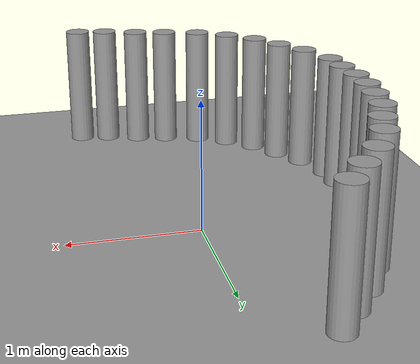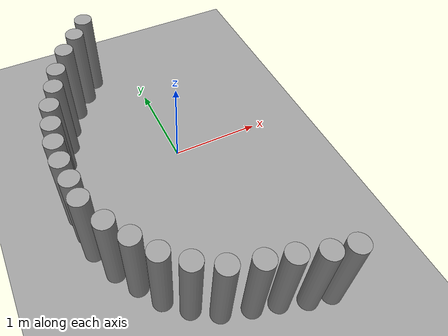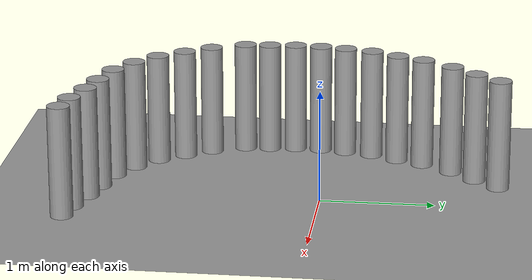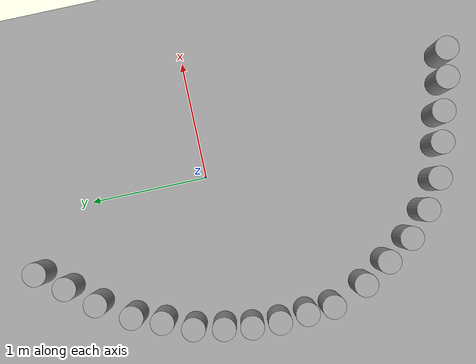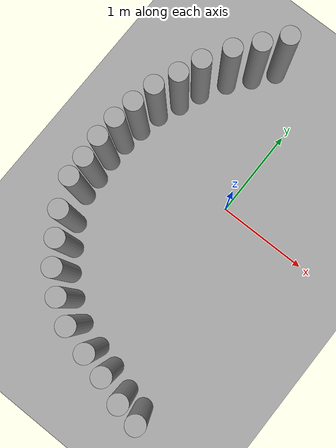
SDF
<sdf version="1.6">
 <world name="default">
  <model name="ground_plane_0">
   <static>1</static>
   <link name="link">
    <collision name="collision">
     <geometry><plane><normal>0 0 1</normal><size>100 100</size></plane></geometry>
     <surface><friction><ode><mu>100</mu><mu2>50</mu2></ode></friction></surface>
    </collision>
    <visual name="visual">
     <cast_shadows>0</cast_shadows>
     <geometry><plane><normal>0 0 1</normal><size>100 100</size></plane></geometry>
     <material>
      <script><uri>file://media/materials/scripts/gazebo.material</uri><name>Gazebo/Grey</name></script>
     </material>
    </visual>
    <velocity_decay><linear>0</linear><angular>0</angular></velocity_decay>
   </link>
   <pose>0.497681 0 0 0 -0 0</pose>
  </model>
  <model name="small_cylinder_0_clone_9">
   <link name="link">
    <inertial>
     <mass>1</mass>
     <inertia><ixx>0.145833</ixx><ixy>0</ixy><ixz>0</ixz><iyy>0.145833</iyy><iyz>0</iyz><izz>0.125</izz></inertia>
    </inertial>
    <visual name="visual">
     <geometry><cylinder><radius>0.1</radius><length>1</length></cylinder></geometry>
     <material>
      <script><name>Gazebo/Grey</name><uri>file://media/materials/scripts/gazebo.material</uri></script>
      <ambient>0.3 0.3 0.3 1</ambient>
      <diffuse>0.7 0.7 0.7 1</diffuse>
      <specular>0.01 0.01 0.01 1</specular>
      <emissive>0 0 0 1</emissive>
      <shader type="vertex"><normal_map>__default__</normal_map></shader>
     </material>
    </visual>
    <collision name="collision">
     <geometry><cylinder><radius>0.1</radius><length>1</length></cylinder></geometry>
     <surface>
      <friction>
       <ode><mu>1</mu><mu2>1</mu2><fdir1>0 0 0</fdir1><slip1>0</slip1><slip2>0</slip2></ode>
       <torsional>
        <coefficient>1</coefficient>
        <patch_radius>0</patch_radius>
        <surface_radius>0</surface_radius>
        <use_patch_radius>1</use_patch_radius>
        <ode><slip>0</slip></ode>
       </torsional>
      </friction>
      <bounce><restitution_coefficient>0</restitution_coefficient><threshold>1e+06</threshold></bounce>
      <contact>
       <collide_without_contact>0</collide_without_contact>
       <collide_without_contact_bitmask>1</collide_without_contact_bitmask>
       <collide_bitmask>1</collide_bitmask>
       <ode>
        <soft_cfm>0</soft_cfm>
        <soft_erp>0.2</soft_erp>
        <kp>1e+13</kp>
        <kd>1</kd>
        <max_vel>0.01</max_vel>
        <min_depth>0</min_depth>
       </ode>
       <bullet>
        <split_impulse>1</split_impulse>
        <split_impulse_penetration_threshold>-0.01</split_impulse_penetration_threshold>
        <soft_cfm>0</soft_cfm>
        <soft_erp>0.2</soft_erp>
        <kp>1e+13</kp>
        <kd>1</kd>
       </bullet>
      </contact>
     </surface>
    </collision>
   </link>
   <static>1</static>
   <pose>0.612069 -2.16006 0.499121 0 -6e-06 0.002231</pose>
  </model>
  <model name="small_cylinder_0_clone_10">
   <link name="link">
    <inertial>
     <mass>1</mass>
     <inertia><ixx>0.145833</ixx><ixy>0</ixy><ixz>0</ixz><iyy>0.145833</iyy><iyz>0</iyz><izz>0.125</izz></inertia>
    </inertial>
    <visual name="visual">
     <geometry><cylinder><radius>0.1</radius><length>1</length></cylinder></geometry>
     <material>
      <script><name>Gazebo/Grey</name><uri>file://media/materials/scripts/gazebo.material</uri></script>
      <ambient>0.3 0.3 0.3 1</ambient>
      <diffuse>0.7 0.7 0.7 1</diffuse>
      <specular>0.01 0.01 0.01 1</specular>
      <emissive>0 0 0 1</emissive>
      <shader type="vertex"><normal_map>__default__</normal_map></shader>
     </material>
    </visual>
    <collision name="collision">
     <geometry><cylinder><radius>0.1</radius><length>1</length></cylinder></geometry>
     <surface>
      <friction>
       <ode><mu>1</mu><mu2>1</mu2><fdir1>0 0 0</fdir1><slip1>0</slip1><slip2>0</slip2></ode>
       <torsional>
        <coefficient>1</coefficient>
        <patch_radius>0</patch_radius>
        <surface_radius>0</surface_radius>
        <use_patch_radius>1</use_patch_radius>
        <ode><slip>0</slip></ode>
       </torsional>
      </friction>
      <bounce><restitution_coefficient>0</restitution_coefficient><threshold>1e+06</threshold></bounce>
      <contact>
       <collide_without_contact>0</collide_without_contact>
       <collide_without_contact_bitmask>1</collide_without_contact_bitmask>
       <collide_bitmask>1</collide_bitmask>
       <ode>
        <soft_cfm>0</soft_cfm>
        <soft_erp>0.2</soft_erp>
        <kp>1e+13</kp>
        <kd>1</kd>
        <max_vel>0.01</max_vel>
        <min_depth>0</min_depth>
       </ode>
       <bullet>
        <split_impulse>1</split_impulse>
        <split_impulse_penetration_threshold>-0.01</split_impulse_penetration_threshold>
        <soft_cfm>0</soft_cfm>
        <soft_erp>0.2</soft_erp>
        <kp>1e+13</kp>
        <kd>1</kd>
       </bullet>
      </contact>
     </surface>
    </collision>
   </link>
   <static>1</static>
   <pose>0.116597 -2.0273 0.499121 0 6e-06 -0.010863</pose>
  </model>
  <model name="small_cylinder_0_clone_11">
   <link name="link">
    <inertial>
     <mass>1</mass>
     <inertia><ixx>0.145833</ixx><ixy>0</ixy><ixz>0</ixz><iyy>0.145833</iyy><iyz>0</iyz><izz>0.125</izz></inertia>
    </inertial>
    <visual name="visual">
     <geometry><cylinder><radius>0.1</radius><length>1</length></cylinder></geometry>
     <material>
      <script><name>Gazebo/Grey</name><uri>file://media/materials/scripts/gazebo.material</uri></script>
      <ambient>0.3 0.3 0.3 1</ambient>
      <diffuse>0.7 0.7 0.7 1</diffuse>
      <specular>0.01 0.01 0.01 1</specular>
      <emissive>0 0 0 1</emissive>
      <shader type="vertex"><normal_map>__default__</normal_map></shader>
     </material>
    </visual>
    <collision name="collision">
     <geometry><cylinder><radius>0.1</radius><length>1</length></cylinder></geometry>
     <surface>
      <friction>
       <ode><mu>1</mu><mu2>1</mu2><fdir1>0 0 0</fdir1><slip1>0</slip1><slip2>0</slip2></ode>
       <torsional>
        <coefficient>1</coefficient>
        <patch_radius>0</patch_radius>
        <surface_radius>0</surface_radius>
        <use_patch_radius>1</use_patch_radius>
        <ode><slip>0</slip></ode>
       </torsional>
      </friction>
      <bounce><restitution_coefficient>0</restitution_coefficient><threshold>1e+06</threshold></bounce>
      <contact>
       <collide_without_contact>0</collide_without_contact>
       <collide_without_contact_bitmask>1</collide_without_contact_bitmask>
       <collide_bitmask>1</collide_bitmask>
       <ode>
        <soft_cfm>0</soft_cfm>
        <soft_erp>0.2</soft_erp>
        <kp>1e+13</kp>
        <kd>1</kd>
        <max_vel>0.01</max_vel>
        <min_depth>0</min_depth>
       </ode>
       <bullet>
        <split_impulse>1</split_impulse>
        <split_impulse_penetration_threshold>-0.01</split_impulse_penetration_threshold>
        <soft_cfm>0</soft_cfm>
        <soft_erp>0.2</soft_erp>
        <kp>1e+13</kp>
        <kd>1</kd>
       </bullet>
      </contact>
     </surface>
    </collision>
   </link>
   <static>1</static>
   <pose>-0.131034 -1.96466 0.499121 0 6e-06 -0.010858</pose>
  </model>
  <model name="small_cylinder_0_clone_12">
   <link name="link">
    <inertial>
     <mass>1</mass>
     <inertia><ixx>0.145833</ixx><ixy>0</ixy><ixz>0</ixz><iyy>0.145833</iyy><iyz>0</iyz><izz>0.125</izz></inertia>
    </inertial>
    <visual name="visual">
     <geometry><cylinder><radius>0.1</radius><length>1</length></cylinder></geometry>
     <material>
      <script><name>Gazebo/Grey</name><uri>file://media/materials/scripts/gazebo.material</uri></script>
      <ambient>0.3 0.3 0.3 1</ambient>
      <diffuse>0.7 0.7 0.7 1</diffuse>
      <specular>0.01 0.01 0.01 1</specular>
      <emissive>0 0 0 1</emissive>
      <shader type="vertex"><normal_map>__default__</normal_map></shader>
     </material>
    </visual>
    <collision name="collision">
     <geometry><cylinder><radius>0.1</radius><length>1</length></cylinder></geometry>
     <surface>
      <friction>
       <ode><mu>1</mu><mu2>1</mu2><fdir1>0 0 0</fdir1><slip1>0</slip1><slip2>0</slip2></ode>
       <torsional>
        <coefficient>1</coefficient>
        <patch_radius>0</patch_radius>
        <surface_radius>0</surface_radius>
        <use_patch_radius>1</use_patch_radius>
        <ode><slip>0</slip></ode>
       </torsional>
      </friction>
      <bounce><restitution_coefficient>0</restitution_coefficient><threshold>1e+06</threshold></bounce>
      <contact>
       <collide_without_contact>0</collide_without_contact>
       <collide_without_contact_bitmask>1</collide_without_contact_bitmask>
       <collide_bitmask>1</collide_bitmask>
       <ode>
        <soft_cfm>0</soft_cfm>
        <soft_erp>0.2</soft_erp>
        <kp>1e+13</kp>
        <kd>1</kd>
        <max_vel>0.01</max_vel>
        <min_depth>0</min_depth>
       </ode>
       <bullet>
        <split_impulse>1</split_impulse>
        <split_impulse_penetration_threshold>-0.01</split_impulse_penetration_threshold>
        <soft_cfm>0</soft_cfm>
        <soft_erp>0.2</soft_erp>
        <kp>1e+13</kp>
        <kd>1</kd>
       </bullet>
      </contact>
     </surface>
    </collision>
   </link>
   <static>1</static>
   <pose>-0.414773 -1.88306 0.499121 0 6e-06 -0.010877</pose>
  </model>
  <model name="small_cylinder_0_clone_13">
   <link name="link">
    <inertial>
     <mass>1</mass>
     <inertia><ixx>0.145833</ixx><ixy>0</ixy><ixz>0</ixz><iyy>0.145833</iyy><iyz>0</iyz><izz>0.125</izz></inertia>
    </inertial>
    <visual name="visual">
     <geometry><cylinder><radius>0.1</radius><length>1</length></cylinder></geometry>
     <material>
      <script><name>Gazebo/Grey</name><uri>file://media/materials/scripts/gazebo.material</uri></script>
      <ambient>0.3 0.3 0.3 1</ambient>
      <diffuse>0.7 0.7 0.7 1</diffuse>
      <specular>0.01 0.01 0.01 1</specular>
      <emissive>0 0 0 1</emissive>
      <shader type="vertex"><normal_map>__default__</normal_map></shader>
     </material>
    </visual>
    <collision name="collision">
     <geometry><cylinder><radius>0.1</radius><length>1</length></cylinder></geometry>
     <surface>
      <friction>
       <ode><mu>1</mu><mu2>1</mu2><fdir1>0 0 0</fdir1><slip1>0</slip1><slip2>0</slip2></ode>
       <torsional>
        <coefficient>1</coefficient>
        <patch_radius>0</patch_radius>
        <surface_radius>0</surface_radius>
        <use_patch_radius>1</use_patch_radius>
        <ode><slip>0</slip></ode>
       </torsional>
      </friction>
      <bounce><restitution_coefficient>0</restitution_coefficient><threshold>1e+06</threshold></bounce>
      <contact>
       <collide_without_contact>0</collide_without_contact>
       <collide_without_contact_bitmask>1</collide_without_contact_bitmask>
       <collide_bitmask>1</collide_bitmask>
       <ode>
        <soft_cfm>0</soft_cfm>
        <soft_erp>0.2</soft_erp>
        <kp>1e+13</kp>
        <kd>1</kd>
        <max_vel>0.01</max_vel>
        <min_depth>0</min_depth>
       </ode>
       <bullet>
        <split_impulse>1</split_impulse>
        <split_impulse_penetration_threshold>-0.01</split_impulse_penetration_threshold>
        <soft_cfm>0</soft_cfm>
        <soft_erp>0.2</soft_erp>
        <kp>1e+13</kp>
        <kd>1</kd>
       </bullet>
      </contact>
     </surface>
    </collision>
   </link>
   <static>1</static>
   <pose>-0.648054 -1.73782 0.499121 0 6e-06 -0.010877</pose>
  </model>
  <model name="small_cylinder_0_clone_14">
   <link name="link">
    <inertial>
     <mass>1</mass>
     <inertia><ixx>0.145833</ixx><ixy>0</ixy><ixz>0</ixz><iyy>0.145833</iyy><iyz>0</iyz><izz>0.125</izz></inertia>
    </inertial>
    <visual name="visual">
     <geometry><cylinder><radius>0.1</radius><length>1</length></cylinder></geometry>
     <material>
      <script><name>Gazebo/Grey</name><uri>file://media/materials/scripts/gazebo.material</uri></script>
      <ambient>0.3 0.3 0.3 1</ambient>
      <diffuse>0.7 0.7 0.7 1</diffuse>
      <specular>0.01 0.01 0.01 1</specular>
      <emissive>0 0 0 1</emissive>
      <shader type="vertex"><normal_map>__default__</normal_map></shader>
     </material>
    </visual>
    <collision name="collision">
     <geometry><cylinder><radius>0.1</radius><length>1</length></cylinder></geometry>
     <surface>
      <friction>
       <ode><mu>1</mu><mu2>1</mu2><fdir1>0 0 0</fdir1><slip1>0</slip1><slip2>0</slip2></ode>
       <torsional>
        <coefficient>1</coefficient>
        <patch_radius>0</patch_radius>
        <surface_radius>0</surface_radius>
        <use_patch_radius>1</use_patch_radius>
        <ode><slip>0</slip></ode>
       </torsional>
      </friction>
      <bounce><restitution_coefficient>0</restitution_coefficient><threshold>1e+06</threshold></bounce>
      <contact>
       <collide_without_contact>0</collide_without_contact>
       <collide_without_contact_bitmask>1</collide_without_contact_bitmask>
       <collide_bitmask>1</collide_bitmask>
       <ode>
        <soft_cfm>0</soft_cfm>
        <soft_erp>0.2</soft_erp>
        <kp>1e+13</kp>
        <kd>1</kd>
        <max_vel>0.01</max_vel>
        <min_depth>0</min_depth>
       </ode>
       <bullet>
        <split_impulse>1</split_impulse>
        <split_impulse_penetration_threshold>-0.01</split_impulse_penetration_threshold>
        <soft_cfm>0</soft_cfm>
        <soft_erp>0.2</soft_erp>
        <kp>1e+13</kp>
        <kd>1</kd>
       </bullet>
      </contact>
     </surface>
    </collision>
   </link>
   <static>1</static>
   <pose>-0.849121 -1.5563 0.499121 0 6e-06 -0.010873</pose>
  </model>
  <model name="small_cylinder_0_clone_15">
   <link name="link">
    <inertial>
     <mass>1</mass>
     <inertia><ixx>0.145833</ixx><ixy>0</ixy><ixz>0</ixz><iyy>0.145833</iyy><iyz>0</iyz><izz>0.125</izz></inertia>
    </inertial>
    <visual name="visual">
     <geometry><cylinder><radius>0.1</radius><length>1</length></cylinder></geometry>
     <material>
      <script><name>Gazebo/Grey</name><uri>file://media/materials/scripts/gazebo.material</uri></script>
      <ambient>0.3 0.3 0.3 1</ambient>
      <diffuse>0.7 0.7 0.7 1</diffuse>
      <specular>0.01 0.01 0.01 1</specular>
      <emissive>0 0 0 1</emissive>
      <shader type="vertex"><normal_map>__default__</normal_map></shader>
     </material>
    </visual>
    <collision name="collision">
     <geometry><cylinder><radius>0.1</radius><length>1</length></cylinder></geometry>
     <surface>
      <friction>
       <ode><mu>1</mu><mu2>1</mu2><fdir1>0 0 0</fdir1><slip1>0</slip1><slip2>0</slip2></ode>
       <torsional>
        <coefficient>1</coefficient>
        <patch_radius>0</patch_radius>
        <surface_radius>0</surface_radius>
        <use_patch_radius>1</use_patch_radius>
        <ode><slip>0</slip></ode>
       </torsional>
      </friction>
      <bounce><restitution_coefficient>0</restitution_coefficient><threshold>1e+06</threshold></bounce>
      <contact>
       <collide_without_contact>0</collide_without_contact>
       <collide_without_contact_bitmask>1</collide_without_contact_bitmask>
       <collide_bitmask>1</collide_bitmask>
       <ode>
        <soft_cfm>0</soft_cfm>
        <soft_erp>0.2</soft_erp>
        <kp>1e+13</kp>
        <kd>1</kd>
        <max_vel>0.01</max_vel>
        <min_depth>0</min_depth>
       </ode>
       <bullet>
        <split_impulse>1</split_impulse>
        <split_impulse_penetration_threshold>-0.01</split_impulse_penetration_threshold>
        <soft_cfm>0</soft_cfm>
        <soft_erp>0.2</soft_erp>
        <kp>1e+13</kp>
        <kd>1</kd>
       </bullet>
      </contact>
     </surface>
    </collision>
   </link>
   <static>1</static>
   <pose>0.379762 -2.11588 0.499121 0 6e-06 -0.01127</pose>
  </model>
  <model name="small_cylinder_0_clone_16">
   <link name="link">
    <inertial>
     <mass>1</mass>
     <inertia><ixx>0.145833</ixx><ixy>0</ixy><ixz>0</ixz><iyy>0.145833</iyy><iyz>0</iyz><izz>0.125</izz></inertia>
    </inertial>
    <visual name="visual">
     <geometry><cylinder><radius>0.1</radius><length>1</length></cylinder></geometry>
     <material>
      <script><name>Gazebo/Grey</name><uri>file://media/materials/scripts/gazebo.material</uri></script>
      <ambient>0.3 0.3 0.3 1</ambient>
      <diffuse>0.7 0.7 0.7 1</diffuse>
      <specular>0.01 0.01 0.01 1</specular>
      <emissive>0 0 0 1</emissive>
      <shader type="vertex"><normal_map>__default__</normal_map></shader>
     </material>
    </visual>
    <collision name="collision">
     <geometry><cylinder><radius>0.1</radius><length>1</length></cylinder></geometry>
     <surface>
      <friction>
       <ode><mu>1</mu><mu2>1</mu2><fdir1>0 0 0</fdir1><slip1>0</slip1><slip2>0</slip2></ode>
       <torsional>
        <coefficient>1</coefficient>
        <patch_radius>0</patch_radius>
        <surface_radius>0</surface_radius>
        <use_patch_radius>1</use_patch_radius>
        <ode><slip>0</slip></ode>
       </torsional>
      </friction>
      <bounce><restitution_coefficient>0</restitution_coefficient><threshold>1e+06</threshold></bounce>
      <contact>
       <collide_without_contact>0</collide_without_contact>
       <collide_without_contact_bitmask>1</collide_without_contact_bitmask>
       <collide_bitmask>1</collide_bitmask>
       <ode>
        <soft_cfm>0</soft_cfm>
        <soft_erp>0.2</soft_erp>
        <kp>1e+13</kp>
        <kd>1</kd>
        <max_vel>0.01</max_vel>
        <min_depth>0</min_depth>
       </ode>
       <bullet>
        <split_impulse>1</split_impulse>
        <split_impulse_penetration_threshold>-0.01</split_impulse_penetration_threshold>
        <soft_cfm>0</soft_cfm>
        <soft_erp>0.2</soft_erp>
        <kp>1e+13</kp>
        <kd>1</kd>
       </bullet>
      </contact>
     </surface>
    </collision>
   </link>
   <static>1</static>
   <pose>-0.999768 -1.3353 0.499121 0 6e-06 -0.011235</pose>
  </model>
  <model name="small_cylinder_0_clone_17">
   <link name="link">
    <inertial>
     <mass>1</mass>
     <inertia><ixx>0.145833</ixx><ixy>0</ixy><ixz>0</ixz><iyy>0.145833</iyy><iyz>0</iyz><izz>0.125</izz></inertia>
    </inertial>
    <visual name="visual">
     <geometry><cylinder><radius>0.1</radius><length>1</length></cylinder></geometry>
     <material>
      <script><name>Gazebo/Grey</name><uri>file://media/materials/scripts/gazebo.material</uri></script>
      <ambient>0.3 0.3 0.3 1</ambient>
      <diffuse>0.7 0.7 0.7 1</diffuse>
      <specular>0.01 0.01 0.01 1</specular>
      <emissive>0 0 0 1</emissive>
      <shader type="vertex"><normal_map>__default__</normal_map></shader>
     </material>
    </visual>
    <collision name="collision">
     <geometry><cylinder><radius>0.1</radius><length>1</length></cylinder></geometry>
     <surface>
      <friction>
       <ode><mu>1</mu><mu2>1</mu2><fdir1>0 0 0</fdir1><slip1>0</slip1><slip2>0</slip2></ode>
       <torsional>
        <coefficient>1</coefficient>
        <patch_radius>0</patch_radius>
        <surface_radius>0</surface_radius>
        <use_patch_radius>1</use_patch_radius>
        <ode><slip>0</slip></ode>
       </torsional>
      </friction>
      <bounce><restitution_coefficient>0</restitution_coefficient><threshold>1e+06</threshold></bounce>
      <contact>
       <collide_without_contact>0</collide_without_contact>
       <collide_without_contact_bitmask>1</collide_without_contact_bitmask>
       <collide_bitmask>1</collide_bitmask>
       <ode>
        <soft_cfm>0</soft_cfm>
        <soft_erp>0.2</soft_erp>
        <kp>1e+13</kp>
        <kd>1</kd>
        <max_vel>0.01</max_vel>
        <min_depth>0</min_depth>
       </ode>
       <bullet>
        <split_impulse>1</split_impulse>
        <split_impulse_penetration_threshold>-0.01</split_impulse_penetration_threshold>
        <soft_cfm>0</soft_cfm>
        <soft_erp>0.2</soft_erp>
        <kp>1e+13</kp>
        <kd>1</kd>
       </bullet>
      </contact>
     </surface>
    </collision>
   </link>
   <static>1</static>
   <pose>-1.14508 -1.11083 0.499121 0 6e-06 -0.010894</pose>
  </model>
  <model name="small_cylinder_0_clone_18">
   <link name="link">
    <inertial>
     <mass>1</mass>
     <inertia><ixx>0.145833</ixx><ixy>0</ixy><ixz>0</ixz><iyy>0.145833</iyy><iyz>0</iyz><izz>0.125</izz></inertia>
    </inertial>
    <visual name="visual">
     <geometry><cylinder><radius>0.1</radius><length>1</length></cylinder></geometry>
     <material>
      <script><name>Gazebo/Grey</name><uri>file://media/materials/scripts/gazebo.material</uri></script>
      <ambient>0.3 0.3 0.3 1</ambient>
      <diffuse>0.7 0.7 0.7 1</diffuse>
      <specular>0.01 0.01 0.01 1</specular>
      <emissive>0 0 0 1</emissive>
      <shader type="vertex"><normal_map>__default__</normal_map></shader>
     </material>
    </visual>
    <collision name="collision">
     <geometry><cylinder><radius>0.1</radius><length>1</length></cylinder></geometry>
     <surface>
      <friction>
       <ode><mu>1</mu><mu2>1</mu2><fdir1>0 0 0</fdir1><slip1>0</slip1><slip2>0</slip2></ode>
       <torsional>
        <coefficient>1</coefficient>
        <patch_radius>0</patch_radius>
        <surface_radius>0</surface_radius>
        <use_patch_radius>1</use_patch_radius>
        <ode><slip>0</slip></ode>
       </torsional>
      </friction>
      <bounce><restitution_coefficient>0</restitution_coefficient><threshold>1e+06</threshold></bounce>
      <contact>
       <collide_without_contact>0</collide_without_contact>
       <collide_without_contact_bitmask>1</collide_without_contact_bitmask>
       <collide_bitmask>1</collide_bitmask>
       <ode>
        <soft_cfm>0</soft_cfm>
        <soft_erp>0.2</soft_erp>
        <kp>1e+13</kp>
        <kd>1</kd>
        <max_vel>0.01</max_vel>
        <min_depth>0</min_depth>
       </ode>
       <bullet>
        <split_impulse>1</split_impulse>
        <split_impulse_penetration_threshold>-0.01</split_impulse_penetration_threshold>
        <soft_cfm>0</soft_cfm>
        <soft_erp>0.2</soft_erp>
        <kp>1e+13</kp>
        <kd>1</kd>
       </bullet>
      </contact>
     </surface>
    </collision>
   </link>
   <static>1</static>
   <pose>-1.26492 -0.816128 0.499121 0 6e-06 -0.010915</pose>
  </model>
  <model name="small_cylinder_0_clone_clone_9">
   <link name="link">
    <inertial>
     <mass>1</mass>
     <inertia><ixx>0.145833</ixx><ixy>0</ixy><ixz>0</ixz><iyy>0.145833</iyy><iyz>0</iyz><izz>0.125</izz></inertia>
    </inertial>
    <visual name="visual">
     <geometry><cylinder><radius>0.1</radius><length>1</length></cylinder></geometry>
     <material>
      <script><name>Gazebo/Grey</name><uri>file://media/materials/scripts/gazebo.material</uri></script>
      <ambient>0.3 0.3 0.3 1</ambient>
      <diffuse>0.7 0.7 0.7 1</diffuse>
      <specular>0.01 0.01 0.01 1</specular>
      <emissive>0 0 0 1</emissive>
      <shader type="vertex"><normal_map>__default__</normal_map></shader>
     </material>
    </visual>
    <collision name="collision">
     <geometry><cylinder><radius>0.1</radius><length>1</length></cylinder></geometry>
     <surface>
      <friction>
       <ode><mu>1</mu><mu2>1</mu2><fdir1>0 0 0</fdir1><slip1>0</slip1><slip2>0</slip2></ode>
       <torsional>
        <coefficient>1</coefficient>
        <patch_radius>0</patch_radius>
        <surface_radius>0</surface_radius>
        <use_patch_radius>1</use_patch_radius>
        <ode><slip>0</slip></ode>
       </torsional>
      </friction>
      <bounce><restitution_coefficient>0</restitution_coefficient><threshold>1e+06</threshold></bounce>
      <contact>
       <collide_without_contact>0</collide_without_contact>
       <collide_without_contact_bitmask>1</collide_without_contact_bitmask>
       <collide_bitmask>1</collide_bitmask>
       <ode>
        <soft_cfm>0</soft_cfm>
        <soft_erp>0.2</soft_erp>
        <kp>1e+13</kp>
        <kd>1</kd>
        <max_vel>0.01</max_vel>
        <min_depth>0</min_depth>
       </ode>
       <bullet>
        <split_impulse>1</split_impulse>
        <split_impulse_penetration_threshold>-0.01</split_impulse_penetration_threshold>
        <soft_cfm>0</soft_cfm>
        <soft_erp>0.2</soft_erp>
        <kp>1e+13</kp>
        <kd>1</kd>
       </bullet>
      </contact>
     </surface>
    </collision>
   </link>
   <static>1</static>
   <pose>-1.27841 -0.593849 0.499121 0 6e-06 -0.010334</pose>
  </model>
  <model name="small_cylinder_0_clone_clone_10">
   <link name="link">
    <inertial>
     <mass>1</mass>
     <inertia><ixx>0.145833</ixx><ixy>0</ixy><ixz>0</ixz><iyy>0.145833</iyy><iyz>0</iyz><izz>0.125</izz></inertia>
    </inertial>
    <visual name="visual">
     <geometry><cylinder><radius>0.1</radius><length>1</length></cylinder></geometry>
     <material>
      <script><name>Gazebo/Grey</name><uri>file://media/materials/scripts/gazebo.material</uri></script>
      <ambient>0.3 0.3 0.3 1</ambient>
      <diffuse>0.7 0.7 0.7 1</diffuse>
      <specular>0.01 0.01 0.01 1</specular>
      <emissive>0 0 0 1</emissive>
      <shader type="vertex"><normal_map>__default__</normal_map></shader>
     </material>
    </visual>
    <collision name="collision">
     <geometry><cylinder><radius>0.1</radius><length>1</length></cylinder></geometry>
     <surface>
      <friction>
       <ode><mu>1</mu><mu2>1</mu2><fdir1>0 0 0</fdir1><slip1>0</slip1><slip2>0</slip2></ode>
       <torsional>
        <coefficient>1</coefficient>
        <patch_radius>0</patch_radius>
        <surface_radius>0</surface_radius>
        <use_patch_radius>1</use_patch_radius>
        <ode><slip>0</slip></ode>
       </torsional>
      </friction>
      <bounce><restitution_coefficient>0</restitution_coefficient><threshold>1e+06</threshold></bounce>
      <contact>
       <collide_without_contact>0</collide_without_contact>
       <collide_without_contact_bitmask>1</collide_without_contact_bitmask>
       <collide_bitmask>1</collide_bitmask>
       <ode>
        <soft_cfm>0</soft_cfm>
        <soft_erp>0.2</soft_erp>
        <kp>1e+13</kp>
        <kd>1</kd>
        <max_vel>0.01</max_vel>
        <min_depth>0</min_depth>
       </ode>
       <bullet>
        <split_impulse>1</split_impulse>
        <split_impulse_penetration_threshold>-0.01</split_impulse_penetration_threshold>
        <soft_cfm>0</soft_cfm>
        <soft_erp>0.2</soft_erp>
        <kp>1e+13</kp>
        <kd>1</kd>
       </bullet>
      </contact>
     </surface>
    </collision>
   </link>
   <static>1</static>
   <pose>-1.299 -0.358683 0.499121 0 6e-06 -0.010264</pose>
  </model>
  <model name="small_cylinder_0_clone_clone_11">
   <link name="link">
    <inertial>
     <mass>1</mass>
     <inertia><ixx>0.145833</ixx><ixy>0</ixy><ixz>0</ixz><iyy>0.145833</iyy><iyz>0</iyz><izz>0.125</izz></inertia>
    </inertial>
    <visual name="visual">
     <geometry><cylinder><radius>0.1</radius><length>1</length></cylinder></geometry>
     <material>
      <script><name>Gazebo/Grey</name><uri>file://media/materials/scripts/gazebo.material</uri></script>
      <ambient>0.3 0.3 0.3 1</ambient>
      <diffuse>0.7 0.7 0.7 1</diffuse>
      <specular>0.01 0.01 0.01 1</specular>
      <emissive>0 0 0 1</emissive>
      <shader type="vertex"><normal_map>__default__</normal_map></shader>
     </material>
    </visual>
    <collision name="collision">
     <geometry><cylinder><radius>0.1</radius><length>1</length></cylinder></geometry>
     <surface>
      <friction>
       <ode><mu>1</mu><mu2>1</mu2><fdir1>0 0 0</fdir1><slip1>0</slip1><slip2>0</slip2></ode>
       <torsional>
        <coefficient>1</coefficient>
        <patch_radius>0</patch_radius>
        <surface_radius>0</surface_radius>
        <use_patch_radius>1</use_patch_radius>
        <ode><slip>0</slip></ode>
       </torsional>
      </friction>
      <bounce><restitution_coefficient>0</restitution_coefficient><threshold>1e+06</threshold></bounce>
      <contact>
       <collide_without_contact>0</collide_without_contact>
       <collide_without_contact_bitmask>1</collide_without_contact_bitmask>
       <collide_bitmask>1</collide_bitmask>
       <ode>
        <soft_cfm>0</soft_cfm>
        <soft_erp>0.2</soft_erp>
        <kp>1e+13</kp>
        <kd>1</kd>
        <max_vel>0.01</max_vel>
        <min_depth>0</min_depth>
       </ode>
       <bullet>
        <split_impulse>1</split_impulse>
        <split_impulse_penetration_threshold>-0.01</split_impulse_penetration_threshold>
        <soft_cfm>0</soft_cfm>
        <soft_erp>0.2</soft_erp>
        <kp>1e+13</kp>
        <kd>1</kd>
       </bullet>
      </contact>
     </surface>
    </collision>
   </link>
   <static>1</static>
   <pose>-1.29081 -0.126085 0.499121 0 6e-06 -0.010195</pose>
  </model>
  <model name="small_cylinder_0_clone_clone_12">
   <link name="link">
    <inertial>
     <mass>1</mass>
     <inertia><ixx>0.145833</ixx><ixy>0</ixy><ixz>0</ixz><iyy>0.145833</iyy><iyz>0</iyz><izz>0.125</izz></inertia>
    </inertial>
    <visual name="visual">
     <geometry><cylinder><radius>0.1</radius><length>1</length></cylinder></geometry>
     <material>
      <script><name>Gazebo/Grey</name><uri>file://media/materials/scripts/gazebo.material</uri></script>
      <ambient>0.3 0.3 0.3 1</ambient>
      <diffuse>0.7 0.7 0.7 1</diffuse>
      <specular>0.01 0.01 0.01 1</specular>
      <emissive>0 0 0 1</emissive>
      <shader type="vertex"><normal_map>__default__</normal_map></shader>
     </material>
    </visual>
    <collision name="collision">
     <geometry><cylinder><radius>0.1</radius><length>1</length></cylinder></geometry>
     <surface>
      <friction>
       <ode><mu>1</mu><mu2>1</mu2><fdir1>0 0 0</fdir1><slip1>0</slip1><slip2>0</slip2></ode>
       <torsional>
        <coefficient>1</coefficient>
        <patch_radius>0</patch_radius>
        <surface_radius>0</surface_radius>
        <use_patch_radius>1</use_patch_radius>
        <ode><slip>0</slip></ode>
       </torsional>
      </friction>
      <bounce><restitution_coefficient>0</restitution_coefficient><threshold>1e+06</threshold></bounce>
      <contact>
       <collide_without_contact>0</collide_without_contact>
       <collide_without_contact_bitmask>1</collide_without_contact_bitmask>
       <collide_bitmask>1</collide_bitmask>
       <ode>
        <soft_cfm>0</soft_cfm>
        <soft_erp>0.2</soft_erp>
        <kp>1e+13</kp>
        <kd>1</kd>
        <max_vel>0.01</max_vel>
        <min_depth>0</min_depth>
       </ode>
       <bullet>
        <split_impulse>1</split_impulse>
        <split_impulse_penetration_threshold>-0.01</split_impulse_penetration_threshold>
        <soft_cfm>0</soft_cfm>
        <soft_erp>0.2</soft_erp>
        <kp>1e+13</kp>
        <kd>1</kd>
       </bullet>
      </contact>
     </surface>
    </collision>
   </link>
   <static>1</static>
   <pose>-1.2542 0.102973 0.499121 0 6e-06 -0.010127</pose>
  </model>
  <model name="small_cylinder_0_clone_clone_13">
   <link name="link">
    <inertial>
     <mass>1</mass>
     <inertia><ixx>0.145833</ixx><ixy>0</ixy><ixz>0</ixz><iyy>0.145833</iyy><iyz>0</iyz><izz>0.125</izz></inertia>
    </inertial>
    <visual name="visual">
     <geometry><cylinder><radius>0.1</radius><length>1</length></cylinder></geometry>
     <material>
      <script><name>Gazebo/Grey</name><uri>file://media/materials/scripts/gazebo.material</uri></script>
      <ambient>0.3 0.3 0.3 1</ambient>
      <diffuse>0.7 0.7 0.7 1</diffuse>
      <specular>0.01 0.01 0.01 1</specular>
      <emissive>0 0 0 1</emissive>
      <shader type="vertex"><normal_map>__default__</normal_map></shader>
     </material>
    </visual>
    <collision name="collision">
     <geometry><cylinder><radius>0.1</radius><length>1</length></cylinder></geometry>
     <surface>
      <friction>
       <ode><mu>1</mu><mu2>1</mu2><fdir1>0 0 0</fdir1><slip1>0</slip1><slip2>0</slip2></ode>
       <torsional>
        <coefficient>1</coefficient>
        <patch_radius>0</patch_radius>
        <surface_radius>0</surface_radius>
        <use_patch_radius>1</use_patch_radius>
        <ode><slip>0</slip></ode>
       </torsional>
      </friction>
      <bounce><restitution_coefficient>0</restitution_coefficient><threshold>1e+06</threshold></bounce>
      <contact>
       <collide_without_contact>0</collide_without_contact>
       <collide_without_contact_bitmask>1</collide_without_contact_bitmask>
       <collide_bitmask>1</collide_bitmask>
       <ode>
        <soft_cfm>0</soft_cfm>
        <soft_erp>0.2</soft_erp>
        <kp>1e+13</kp>
        <kd>1</kd>
        <max_vel>0.01</max_vel>
        <min_depth>0</min_depth>
       </ode>
       <bullet>
        <split_impulse>1</split_impulse>
        <split_impulse_penetration_threshold>-0.01</split_impulse_penetration_threshold>
        <soft_cfm>0</soft_cfm>
        <soft_erp>0.2</soft_erp>
        <kp>1e+13</kp>
        <kd>1</kd>
       </bullet>
      </contact>
     </surface>
    </collision>
   </link>
   <static>1</static>
   <pose>-1.20335 0.349058 0.499121 0 6e-06 -0.010089</pose>
  </model>
  <model name="small_cylinder_0_clone_clone_14">
   <link name="link">
    <inertial>
     <mass>1</mass>
     <inertia><ixx>0.145833</ixx><ixy>0</ixy><ixz>0</ixz><iyy>0.145833</iyy><iyz>0</iyz><izz>0.125</izz></inertia>
    </inertial>
    <visual name="visual">
     <geometry><cylinder><radius>0.1</radius><length>1</length></cylinder></geometry>
     <material>
      <script><name>Gazebo/Grey</name><uri>file://media/materials/scripts/gazebo.material</uri></script>
      <ambient>0.3 0.3 0.3 1</ambient>
      <diffuse>0.7 0.7 0.7 1</diffuse>
      <specular>0.01 0.01 0.01 1</specular>
      <emissive>0 0 0 1</emissive>
      <shader type="vertex"><normal_map>__default__</normal_map></shader>
     </material>
    </visual>
    <collision name="collision">
     <geometry><cylinder><radius>0.1</radius><length>1</length></cylinder></geometry>
     <surface>
      <friction>
       <ode><mu>1</mu><mu2>1</mu2><fdir1>0 0 0</fdir1><slip1>0</slip1><slip2>0</slip2></ode>
       <torsional>
        <coefficient>1</coefficient>
        <patch_radius>0</patch_radius>
        <surface_radius>0</surface_radius>
        <use_patch_radius>1</use_patch_radius>
        <ode><slip>0</slip></ode>
       </torsional>
      </friction>
      <bounce><restitution_coefficient>0</restitution_coefficient><threshold>1e+06</threshold></bounce>
      <contact>
       <collide_without_contact>0</collide_without_contact>
       <collide_without_contact_bitmask>1</collide_without_contact_bitmask>
       <collide_bitmask>1</collide_bitmask>
       <ode>
        <soft_cfm>0</soft_cfm>
        <soft_erp>0.2</soft_erp>
        <kp>1e+13</kp>
        <kd>1</kd>
        <max_vel>0.01</max_vel>
        <min_depth>0</min_depth>
       </ode>
       <bullet>
        <split_impulse>1</split_impulse>
        <split_impulse_penetration_threshold>-0.01</split_impulse_penetration_threshold>
        <soft_cfm>0</soft_cfm>
        <soft_erp>0.2</soft_erp>
        <kp>1e+13</kp>
        <kd>1</kd>
       </bullet>
      </contact>
     </surface>
    </collision>
   </link>
   <static>1</static>
   <pose>-1.09798 0.588709 0.499121 0 6e-06 -0.010051</pose>
  </model>
  <model name="small_cylinder_0_clone_clone_15">
   <link name="link">
    <inertial>
     <mass>1</mass>
     <inertia><ixx>0.145833</ixx><ixy>0</ixy><ixz>0</ixz><iyy>0.145833</iyy><iyz>0</iyz><izz>0.125</izz></inertia>
    </inertial>
    <visual name="visual">
     <geometry><cylinder><radius>0.1</radius><length>1</length></cylinder></geometry>
     <material>
      <script><name>Gazebo/Grey</name><uri>file://media/materials/scripts/gazebo.material</uri></script>
      <ambient>0.3 0.3 0.3 1</ambient>
      <diffuse>0.7 0.7 0.7 1</diffuse>
      <specular>0.01 0.01 0.01 1</specular>
      <emissive>0 0 0 1</emissive>
      <shader type="vertex"><normal_map>__default__</normal_map></shader>
     </material>
    </visual>
    <collision name="collision">
     <geometry><cylinder><radius>0.1</radius><length>1</length></cylinder></geometry>
     <surface>
      <friction>
       <ode><mu>1</mu><mu2>1</mu2><fdir1>0 0 0</fdir1><slip1>0</slip1><slip2>0</slip2></ode>
       <torsional>
        <coefficient>1</coefficient>
        <patch_radius>0</patch_radius>
        <surface_radius>0</surface_radius>
        <use_patch_radius>1</use_patch_radius>
        <ode><slip>0</slip></ode>
       </torsional>
      </friction>
      <bounce><restitution_coefficient>0</restitution_coefficient><threshold>1e+06</threshold></bounce>
      <contact>
       <collide_without_contact>0</collide_without_contact>
       <collide_without_contact_bitmask>1</collide_without_contact_bitmask>
       <collide_bitmask>1</collide_bitmask>
       <ode>
        <soft_cfm>0</soft_cfm>
        <soft_erp>0.2</soft_erp>
        <kp>1e+13</kp>
        <kd>1</kd>
        <max_vel>0.01</max_vel>
        <min_depth>0</min_depth>
       </ode>
       <bullet>
        <split_impulse>1</split_impulse>
        <split_impulse_penetration_threshold>-0.01</split_impulse_penetration_threshold>
        <soft_cfm>0</soft_cfm>
        <soft_erp>0.2</soft_erp>
        <kp>1e+13</kp>
        <kd>1</kd>
       </bullet>
      </contact>
     </surface>
    </collision>
   </link>
   <static>1</static>
   <pose>-1.00519 0.825068 0.499121 0 6e-06 -0.010005</pose>
  </model>
  <model name="small_cylinder_0_clone_clone_16">
   <link name="link">
    <inertial>
     <mass>1</mass>
     <inertia><ixx>0.145833</ixx><ixy>0</ixy><ixz>0</ixz><iyy>0.145833</iyy><iyz>0</iyz><izz>0.125</izz></inertia>
    </inertial>
    <visual name="visual">
     <geometry><cylinder><radius>0.1</radius><length>1</length></cylinder></geometry>
     <material>
      <script><name>Gazebo/Grey</name><uri>file://media/materials/scripts/gazebo.material</uri></script>
      <ambient>0.3 0.3 0.3 1</ambient>
      <diffuse>0.7 0.7 0.7 1</diffuse>
      <specular>0.01 0.01 0.01 1</specular>
      <emissive>0 0 0 1</emissive>
      <shader type="vertex"><normal_map>__default__</normal_map></shader>
     </material>
    </visual>
    <collision name="collision">
     <geometry><cylinder><radius>0.1</radius><length>1</length></cylinder></geometry>
     <surface>
      <friction>
       <ode><mu>1</mu><mu2>1</mu2><fdir1>0 0 0</fdir1><slip1>0</slip1><slip2>0</slip2></ode>
       <torsional>
        <coefficient>1</coefficient>
        <patch_radius>0</patch_radius>
        <surface_radius>0</surface_radius>
        <use_patch_radius>1</use_patch_radius>
        <ode><slip>0</slip></ode>
       </torsional>
      </friction>
      <bounce><restitution_coefficient>0</restitution_coefficient><threshold>1e+06</threshold></bounce>
      <contact>
       <collide_without_contact>0</collide_without_contact>
       <collide_without_contact_bitmask>1</collide_without_contact_bitmask>
       <collide_bitmask>1</collide_bitmask>
       <ode>
        <soft_cfm>0</soft_cfm>
        <soft_erp>0.2</soft_erp>
        <kp>1e+13</kp>
        <kd>1</kd>
        <max_vel>0.01</max_vel>
        <min_depth>0</min_depth>
       </ode>
       <bullet>
        <split_impulse>1</split_impulse>
        <split_impulse_penetration_threshold>-0.01</split_impulse_penetration_threshold>
        <soft_cfm>0</soft_cfm>
        <soft_erp>0.2</soft_erp>
        <kp>1e+13</kp>
        <kd>1</kd>
       </bullet>
      </contact>
     </surface>
    </collision>
   </link>
   <static>1</static>
   <pose>-0.843201 1.09351 0.499121 0 6e-06 -0.009967</pose>
  </model>
  <model name="small_cylinder_0_clone_clone_17">
   <link name="link">
    <inertial>
     <mass>1</mass>
     <inertia><ixx>0.145833</ixx><ixy>0</ixy><ixz>0</ixz><iyy>0.145833</iyy><iyz>0</iyz><izz>0.125</izz></inertia>
    </inertial>
    <visual name="visual">
     <geometry><cylinder><radius>0.1</radius><length>1</length></cylinder></geometry>
     <material>
      <script><name>Gazebo/Grey</name><uri>file://media/materials/scripts/gazebo.material</uri></script>
      <ambient>0.3 0.3 0.3 1</ambient>
      <diffuse>0.7 0.7 0.7 1</diffuse>
      <specular>0.01 0.01 0.01 1</specular>
      <emissive>0 0 0 1</emissive>
      <shader type="vertex"><normal_map>__default__</normal_map></shader>
     </material>
    </visual>
    <collision name="collision">
     <geometry><cylinder><radius>0.1</radius><length>1</length></cylinder></geometry>
     <surface>
      <friction>
       <ode><mu>1</mu><mu2>1</mu2><fdir1>0 0 0</fdir1><slip1>0</slip1><slip2>0</slip2></ode>
       <torsional>
        <coefficient>1</coefficient>
        <patch_radius>0</patch_radius>
        <surface_radius>0</surface_radius>
        <use_patch_radius>1</use_patch_radius>
        <ode><slip>0</slip></ode>
       </torsional>
      </friction>
      <bounce><restitution_coefficient>0</restitution_coefficient><threshold>1e+06</threshold></bounce>
      <contact>
       <collide_without_contact>0</collide_without_contact>
       <collide_without_contact_bitmask>1</collide_without_contact_bitmask>
       <collide_bitmask>1</collide_bitmask>
       <ode>
        <soft_cfm>0</soft_cfm>
        <soft_erp>0.2</soft_erp>
        <kp>1e+13</kp>
        <kd>1</kd>
        <max_vel>0.01</max_vel>
        <min_depth>0</min_depth>
       </ode>
       <bullet>
        <split_impulse>1</split_impulse>
        <split_impulse_penetration_threshold>-0.01</split_impulse_penetration_threshold>
        <soft_cfm>0</soft_cfm>
        <soft_erp>0.2</soft_erp>
        <kp>1e+13</kp>
        <kd>1</kd>
       </bullet>
      </contact>
     </surface>
    </collision>
   </link>
   <static>1</static>
   <pose>-0.660753 1.31353 0.499121 0 -6e-06 -0.009661</pose>
  </model>
  <model name="small_cylinder_0_clone_clone_18">
   <link name="link">
    <inertial>
     <mass>1</mass>
     <inertia><ixx>0.145833</ixx><ixy>0</ixy><ixz>0</ixz><iyy>0.145833</iyy><iyz>0</iyz><izz>0.125</izz></inertia>
    </inertial>
    <visual name="visual">
     <geometry><cylinder><radius>0.1</radius><length>1</length></cylinder></geometry>
     <material>
      <script><name>Gazebo/Grey</name><uri>file://media/materials/scripts/gazebo.material</uri></script>
      <ambient>0.3 0.3 0.3 1</ambient>
      <diffuse>0.7 0.7 0.7 1</diffuse>
      <specular>0.01 0.01 0.01 1</specular>
      <emissive>0 0 0 1</emissive>
      <shader type="vertex"><normal_map>__default__</normal_map></shader>
     </material>
    </visual>
    <collision name="collision">
     <geometry><cylinder><radius>0.1</radius><length>1</length></cylinder></geometry>
     <surface>
      <friction>
       <ode><mu>1</mu><mu2>1</mu2><fdir1>0 0 0</fdir1><slip1>0</slip1><slip2>0</slip2></ode>
       <torsional>
        <coefficient>1</coefficient>
        <patch_radius>0</patch_radius>
        <surface_radius>0</surface_radius>
        <use_patch_radius>1</use_patch_radius>
        <ode><slip>0</slip></ode>
       </torsional>
      </friction>
      <bounce><restitution_coefficient>0</restitution_coefficient><threshold>1e+06</threshold></bounce>
      <contact>
       <collide_without_contact>0</collide_without_contact>
       <collide_without_contact_bitmask>1</collide_without_contact_bitmask>
       <collide_bitmask>1</collide_bitmask>
       <ode>
        <soft_cfm>0</soft_cfm>
        <soft_erp>0.2</soft_erp>
        <kp>1e+13</kp>
        <kd>1</kd>
        <max_vel>0.01</max_vel>
        <min_depth>0</min_depth>
       </ode>
       <bullet>
        <split_impulse>1</split_impulse>
        <split_impulse_penetration_threshold>-0.01</split_impulse_penetration_threshold>
        <soft_cfm>0</soft_cfm>
        <soft_erp>0.2</soft_erp>
        <kp>1e+13</kp>
        <kd>1</kd>
       </bullet>
      </contact>
     </surface>
    </collision>
   </link>
   <static>1</static>
   <pose>-0.493062 1.52918 0.499121 0 6e-06 -0.009829</pose>
  </model>
 </world>
</sdf>
